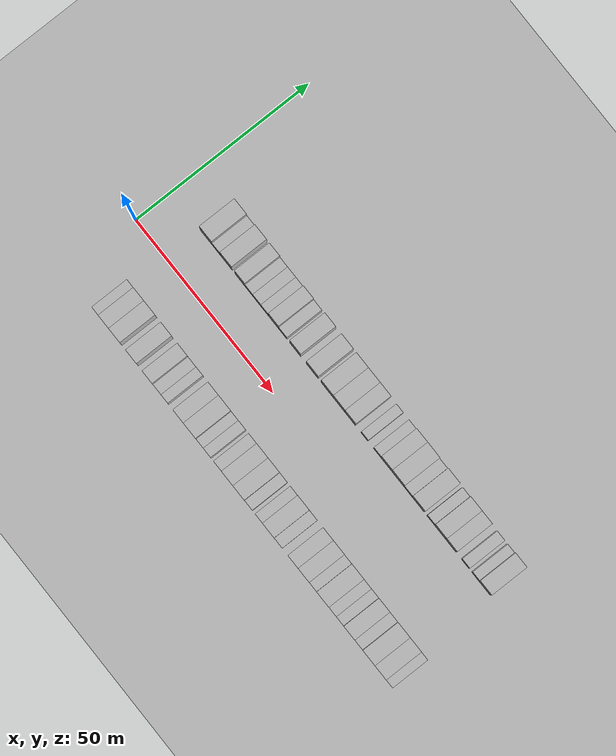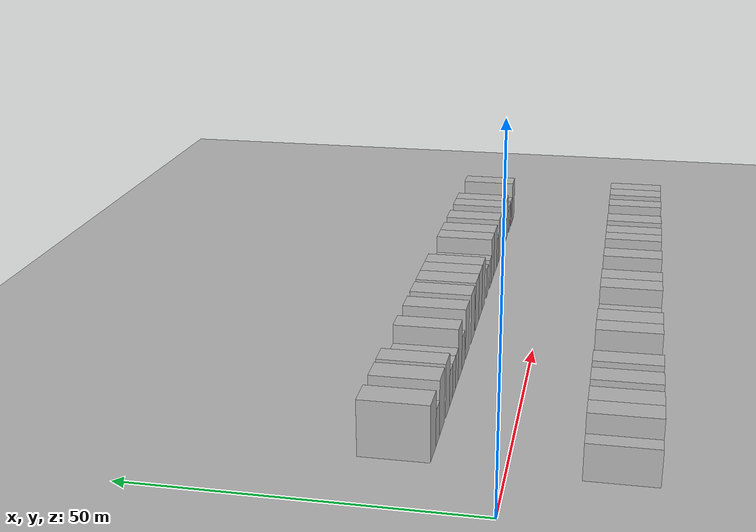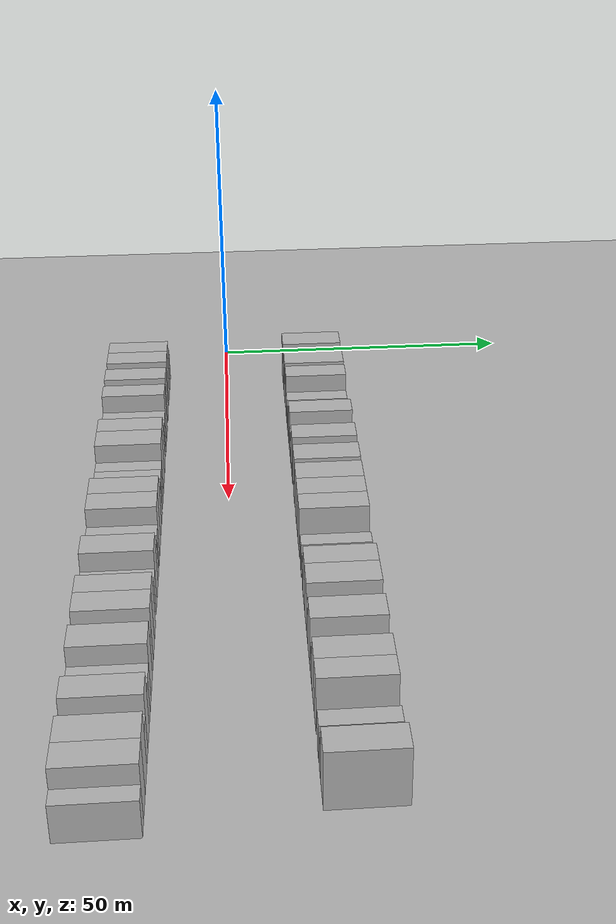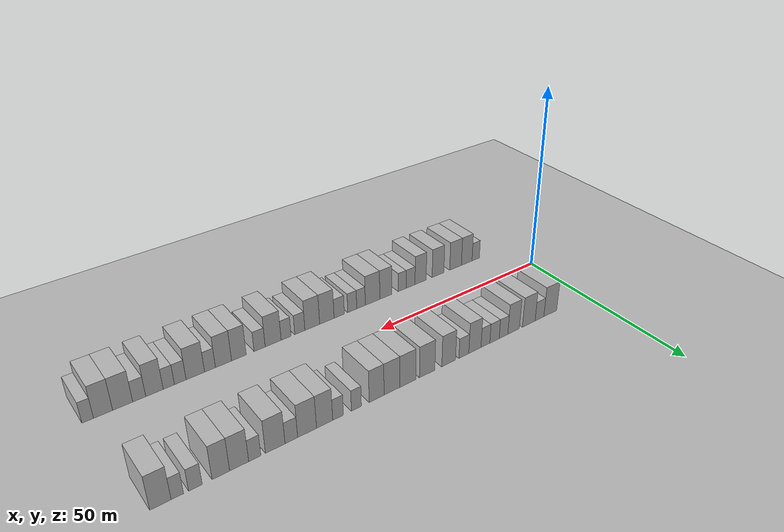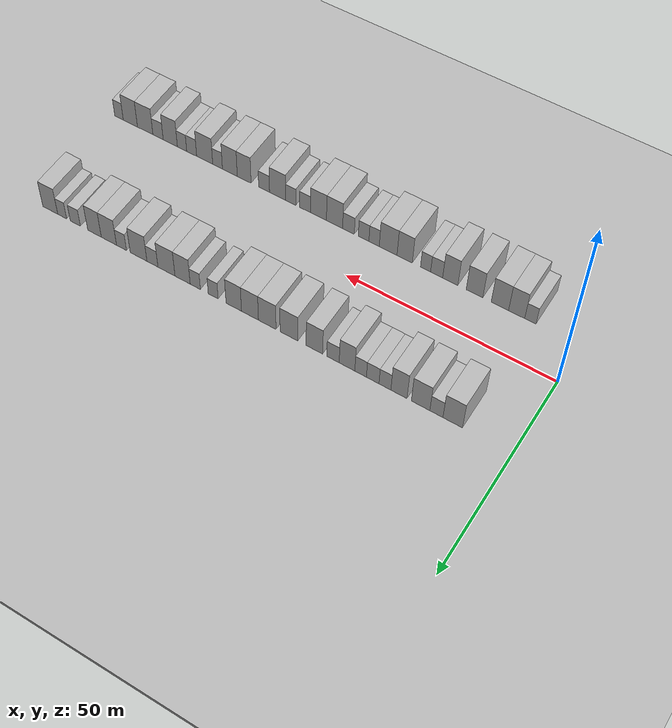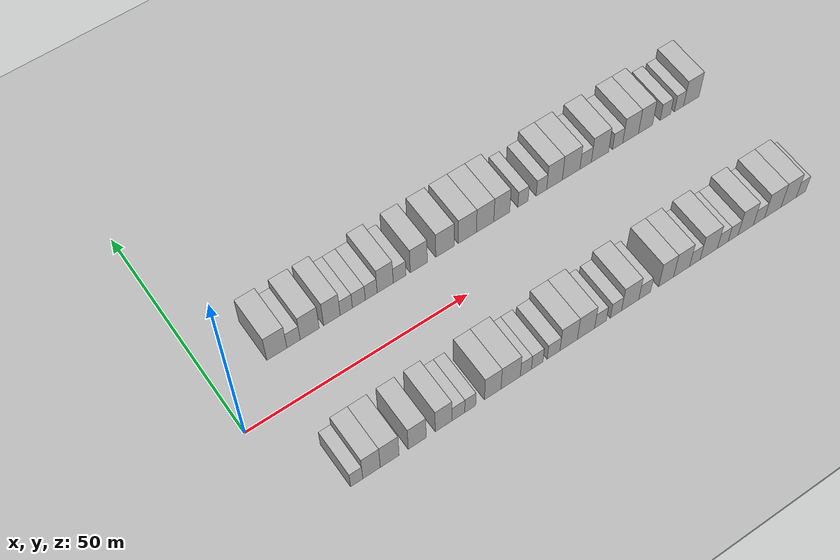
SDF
<sdf version="1.6">
 <world name="default">
  <include><name>ground_plane_1</name><uri>model://HANNAS_ground_plane</uri></include>
  <include>
   <name>ground_plane_2</name>
   <uri>model://HANNAS_ground_plane</uri>
   <pose>100 0 0  0 0 0</pose>
  </include>
  <model name="building_1">
   <static>1</static>
   <pose>13.2188 15.0000 0 0.000000 0.000000 1.570796</pose>
   <link name="link">
    <pose>0 0 4.50 0 0 0</pose>
    <collision name="collision"><geometry><box><size>10.0000 4.4376 9.0000</size></box></geometry></collision>
    <visual name="visual">
     <cast_shadows>0</cast_shadows>
     <geometry><box><size>10.0000 4.4376 9.0000</size></box></geometry>
     <material>
      <script>
       <uri>model://HANNAS_wall/materials/scripts</uri>
       <uri>model://HANNAS_wall/materials/textures</uri>
       <name>vrc/HANNAS_wall</name>
      </script>
     </material>
    </visual>
   </link>
  </model>
  <model name="building_2">
   <static>1</static>
   <pose>16.9260 15.0000 0 0.000000 0.000000 1.570796</pose>
   <link name="link">
    <pose>0 0 3.00 0 0 0</pose>
    <collision name="collision"><geometry><box><size>10.0000 2.9768 6.0000</size></box></geometry></collision>
    <visual name="visual">
     <cast_shadows>0</cast_shadows>
     <geometry><box><size>10.0000 2.9768 6.0000</size></box></geometry>
     <material>
      <script>
       <uri>model://HANNAS_wall/materials/scripts</uri>
       <uri>model://HANNAS_wall/materials/textures</uri>
       <name>vrc/HANNAS_wall</name>
      </script>
     </material>
    </visual>
   </link>
  </model>
  <model name="building_3">
   <static>1</static>
   <pose>20.5367 15.0000 0 0.000000 0.000000 1.570796</pose>
   <link name="link">
    <pose>0 0 4.50 0 0 0</pose>
    <collision name="collision"><geometry><box><size>10.0000 4.2446 9.0000</size></box></geometry></collision>
    <visual name="visual">
     <cast_shadows>0</cast_shadows>
     <geometry><box><size>10.0000 4.2446 9.0000</size></box></geometry>
     <material>
      <script>
       <uri>model://HANNAS_wall/materials/scripts</uri>
       <uri>model://HANNAS_wall/materials/textures</uri>
       <name>vrc/HANNAS_wall</name>
      </script>
     </material>
    </visual>
   </link>
  </model>
  <model name="building_4">
   <static>1</static>
   <pose>25.5316 15.0000 0 0.000000 0.000000 1.570796</pose>
   <link name="link">
    <pose>0 0 4.50 0 0 0</pose>
    <collision name="collision"><geometry><box><size>10.0000 3.7453 9.0000</size></box></geometry></collision>
    <visual name="visual">
     <cast_shadows>0</cast_shadows>
     <geometry><box><size>10.0000 3.7453 9.0000</size></box></geometry>
     <material>
      <script>
       <uri>model://HANNAS_wall/materials/scripts</uri>
       <uri>model://HANNAS_wall/materials/textures</uri>
       <name>vrc/HANNAS_wall</name>
      </script>
     </material>
    </visual>
   </link>
  </model>
  <model name="building_5">
   <static>1</static>
   <pose>28.7888 15.0000 0 0.000000 0.000000 1.570796</pose>
   <link name="link">
    <pose>0 0 3.00 0 0 0</pose>
    <collision name="collision"><geometry><box><size>10.0000 2.7692 6.0000</size></box></geometry></collision>
    <visual name="visual">
     <cast_shadows>0</cast_shadows>
     <geometry><box><size>10.0000 2.7692 6.0000</size></box></geometry>
     <material>
      <script>
       <uri>model://HANNAS_wall/materials/scripts</uri>
       <uri>model://HANNAS_wall/materials/textures</uri>
       <name>vrc/HANNAS_wall</name>
      </script>
     </material>
    </visual>
   </link>
  </model>
  <model name="building_6">
   <static>1</static>
   <pose>31.6491 15.0000 0 0.000000 0.000000 1.570796</pose>
   <link name="link">
    <pose>0 0 3.00 0 0 0</pose>
    <collision name="collision"><geometry><box><size>10.0000 2.9513 6.0000</size></box></geometry></collision>
    <visual name="visual">
     <cast_shadows>0</cast_shadows>
     <geometry><box><size>10.0000 2.9513 6.0000</size></box></geometry>
     <material>
      <script>
       <uri>model://HANNAS_wall/materials/scripts</uri>
       <uri>model://HANNAS_wall/materials/textures</uri>
       <name>vrc/HANNAS_wall</name>
      </script>
     </material>
    </visual>
   </link>
  </model>
  <model name="building_7">
   <static>1</static>
   <pose>34.4945 15.0000 0 0.000000 0.000000 1.570796</pose>
   <link name="link">
    <pose>0 0 3.00 0 0 0</pose>
    <collision name="collision"><geometry><box><size>10.0000 2.7396 6.0000</size></box></geometry></collision>
    <visual name="visual">
     <cast_shadows>0</cast_shadows>
     <geometry><box><size>10.0000 2.7396 6.0000</size></box></geometry>
     <material>
      <script>
       <uri>model://HANNAS_wall/materials/scripts</uri>
       <uri>model://HANNAS_wall/materials/textures</uri>
       <name>vrc/HANNAS_wall</name>
      </script>
     </material>
    </visual>
   </link>
  </model>
  <model name="building_8">
   <static>1</static>
   <pose>37.7245 15.0000 0 0.000000 0.000000 1.570796</pose>
   <link name="link">
    <pose>0 0 4.50 0 0 0</pose>
    <collision name="collision"><geometry><box><size>10.0000 3.7204 9.0000</size></box></geometry></collision>
    <visual name="visual">
     <cast_shadows>0</cast_shadows>
     <geometry><box><size>10.0000 3.7204 9.0000</size></box></geometry>
     <material>
      <script>
       <uri>model://HANNAS_wall/materials/scripts</uri>
       <uri>model://HANNAS_wall/materials/textures</uri>
       <name>vrc/HANNAS_wall</name>
      </script>
     </material>
    </visual>
   </link>
  </model>
  <model name="building_9">
   <static>1</static>
   <pose>41.0655 15.0000 0 0.000000 0.000000 1.570796</pose>
   <link name="link">
    <pose>0 0 3.00 0 0 0</pose>
    <collision name="collision"><geometry><box><size>10.0000 2.9615 6.0000</size></box></geometry></collision>
    <visual name="visual">
     <cast_shadows>0</cast_shadows>
     <geometry><box><size>10.0000 2.9615 6.0000</size></box></geometry>
     <material>
      <script>
       <uri>model://HANNAS_wall/materials/scripts</uri>
       <uri>model://HANNAS_wall/materials/textures</uri>
       <name>vrc/HANNAS_wall</name>
      </script>
     </material>
    </visual>
   </link>
  </model>
  <model name="building_10">
   <static>1</static>
   <pose>45.5478 15.0000 0 0.000000 0.000000 1.570796</pose>
   <link name="link">
    <pose>0 0 4.50 0 0 0</pose>
    <collision name="collision"><geometry><box><size>10.0000 4.0031 9.0000</size></box></geometry></collision>
    <visual name="visual">
     <cast_shadows>0</cast_shadows>
     <geometry><box><size>10.0000 4.0031 9.0000</size></box></geometry>
     <material>
      <script>
       <uri>model://HANNAS_wall/materials/scripts</uri>
       <uri>model://HANNAS_wall/materials/textures</uri>
       <name>vrc/HANNAS_wall</name>
      </script>
     </material>
    </visual>
   </link>
  </model>
  <model name="building_11">
   <static>1</static>
   <pose>51.7211 15.0000 0 0.000000 0.000000 1.570796</pose>
   <link name="link">
    <pose>0 0 4.50 0 0 0</pose>
    <collision name="collision"><geometry><box><size>10.0000 4.3435 9.0000</size></box></geometry></collision>
    <visual name="visual">
     <cast_shadows>0</cast_shadows>
     <geometry><box><size>10.0000 4.3435 9.0000</size></box></geometry>
     <material>
      <script>
       <uri>model://HANNAS_wall/materials/scripts</uri>
       <uri>model://HANNAS_wall/materials/textures</uri>
       <name>vrc/HANNAS_wall</name>
      </script>
     </material>
    </visual>
   </link>
  </model>
  <model name="building_12">
   <static>1</static>
   <pose>57.0680 15.0000 0 0.000000 0.000000 1.570796</pose>
   <link name="link">
    <pose>0 0 4.50 0 0 0</pose>
    <collision name="collision"><geometry><box><size>10.0000 4.3503 9.0000</size></box></geometry></collision>
    <visual name="visual">
     <cast_shadows>0</cast_shadows>
     <geometry><box><size>10.0000 4.3503 9.0000</size></box></geometry>
     <material>
      <script>
       <uri>model://HANNAS_wall/materials/scripts</uri>
       <uri>model://HANNAS_wall/materials/textures</uri>
       <name>vrc/HANNAS_wall</name>
      </script>
     </material>
    </visual>
   </link>
  </model>
  <model name="building_13">
   <static>1</static>
   <pose>61.3553 15.0000 0 0.000000 0.000000 1.570796</pose>
   <link name="link">
    <pose>0 0 4.50 0 0 0</pose>
    <collision name="collision"><geometry><box><size>10.0000 4.2243 9.0000</size></box></geometry></collision>
    <visual name="visual">
     <cast_shadows>0</cast_shadows>
     <geometry><box><size>10.0000 4.2243 9.0000</size></box></geometry>
     <material>
      <script>
       <uri>model://HANNAS_wall/materials/scripts</uri>
       <uri>model://HANNAS_wall/materials/textures</uri>
       <name>vrc/HANNAS_wall</name>
      </script>
     </material>
    </visual>
   </link>
  </model>
  <model name="building_14">
   <static>1</static>
   <pose>65.4110 15.0000 0 0.000000 0.000000 1.570796</pose>
   <link name="link">
    <pose>0 0 4.50 0 0 0</pose>
    <collision name="collision"><geometry><box><size>10.0000 3.8870 9.0000</size></box></geometry></collision>
    <visual name="visual">
     <cast_shadows>0</cast_shadows>
     <geometry><box><size>10.0000 3.8870 9.0000</size></box></geometry>
     <material>
      <script>
       <uri>model://HANNAS_wall/materials/scripts</uri>
       <uri>model://HANNAS_wall/materials/textures</uri>
       <name>vrc/HANNAS_wall</name>
      </script>
     </material>
    </visual>
   </link>
  </model>
  <model name="building_15">
   <static>1</static>
   <pose>70.6132 15.0000 0 0.000000 0.000000 1.570796</pose>
   <link name="link">
    <pose>0 0 3.00 0 0 0</pose>
    <collision name="collision"><geometry><box><size>10.0000 2.5174 6.0000</size></box></geometry></collision>
    <visual name="visual">
     <cast_shadows>0</cast_shadows>
     <geometry><box><size>10.0000 2.5174 6.0000</size></box></geometry>
     <material>
      <script>
       <uri>model://HANNAS_wall/materials/scripts</uri>
       <uri>model://HANNAS_wall/materials/textures</uri>
       <name>vrc/HANNAS_wall</name>
      </script>
     </material>
    </visual>
   </link>
  </model>
  <model name="building_16">
   <static>1</static>
   <pose>75.1780 15.0000 0 0.000000 0.000000 1.570796</pose>
   <link name="link">
    <pose>0 0 3.00 0 0 0</pose>
    <collision name="collision"><geometry><box><size>10.0000 2.6121 6.0000</size></box></geometry></collision>
    <visual name="visual">
     <cast_shadows>0</cast_shadows>
     <geometry><box><size>10.0000 2.6121 6.0000</size></box></geometry>
     <material>
      <script>
       <uri>model://HANNAS_wall/materials/scripts</uri>
       <uri>model://HANNAS_wall/materials/textures</uri>
       <name>vrc/HANNAS_wall</name>
      </script>
     </material>
    </visual>
   </link>
  </model>
  <model name="building_17">
   <static>1</static>
   <pose>78.4476 15.0000 0 0.000000 0.000000 1.570796</pose>
   <link name="link">
    <pose>0 0 4.50 0 0 0</pose>
    <collision name="collision"><geometry><box><size>10.0000 3.9272 9.0000</size></box></geometry></collision>
    <visual name="visual">
     <cast_shadows>0</cast_shadows>
     <geometry><box><size>10.0000 3.9272 9.0000</size></box></geometry>
     <material>
      <script>
       <uri>model://HANNAS_wall/materials/scripts</uri>
       <uri>model://HANNAS_wall/materials/textures</uri>
       <name>vrc/HANNAS_wall</name>
      </script>
     </material>
    </visual>
   </link>
  </model>
  <model name="building_18">
   <static>1</static>
   <pose>82.6273 15.0000 0 0.000000 0.000000 1.570796</pose>
   <link name="link">
    <pose>0 0 4.50 0 0 0</pose>
    <collision name="collision"><geometry><box><size>10.0000 4.4322 9.0000</size></box></geometry></collision>
    <visual name="visual">
     <cast_shadows>0</cast_shadows>
     <geometry><box><size>10.0000 4.4322 9.0000</size></box></geometry>
     <material>
      <script>
       <uri>model://HANNAS_wall/materials/scripts</uri>
       <uri>model://HANNAS_wall/materials/textures</uri>
       <name>vrc/HANNAS_wall</name>
      </script>
     </material>
    </visual>
   </link>
  </model>
  <model name="building_19">
   <static>1</static>
   <pose>86.2931 15.0000 0 0.000000 0.000000 1.570796</pose>
   <link name="link">
    <pose>0 0 3.00 0 0 0</pose>
    <collision name="collision"><geometry><box><size>10.0000 2.8995 6.0000</size></box></geometry></collision>
    <visual name="visual">
     <cast_shadows>0</cast_shadows>
     <geometry><box><size>10.0000 2.8995 6.0000</size></box></geometry>
     <material>
      <script>
       <uri>model://HANNAS_wall/materials/scripts</uri>
       <uri>model://HANNAS_wall/materials/textures</uri>
       <name>vrc/HANNAS_wall</name>
      </script>
     </material>
    </visual>
   </link>
  </model>
  <model name="building_20">
   <static>1</static>
   <pose>89.9431 15.0000 0 0.000000 0.000000 1.570796</pose>
   <link name="link">
    <pose>0 0 4.50 0 0 0</pose>
    <collision name="collision"><geometry><box><size>10.0000 4.4005 9.0000</size></box></geometry></collision>
    <visual name="visual">
     <cast_shadows>0</cast_shadows>
     <geometry><box><size>10.0000 4.4005 9.0000</size></box></geometry>
     <material>
      <script>
       <uri>model://HANNAS_wall/materials/scripts</uri>
       <uri>model://HANNAS_wall/materials/textures</uri>
       <name>vrc/HANNAS_wall</name>
      </script>
     </material>
    </visual>
   </link>
  </model>
  <model name="building_21">
   <static>1</static>
   <pose>94.4690 15.0000 0 0.000000 0.000000 1.570796</pose>
   <link name="link">
    <pose>0 0 3.00 0 0 0</pose>
    <collision name="collision"><geometry><box><size>10.0000 2.6513 6.0000</size></box></geometry></collision>
    <visual name="visual">
     <cast_shadows>0</cast_shadows>
     <geometry><box><size>10.0000 2.6513 6.0000</size></box></geometry>
     <material>
      <script>
       <uri>model://HANNAS_wall/materials/scripts</uri>
       <uri>model://HANNAS_wall/materials/textures</uri>
       <name>vrc/HANNAS_wall</name>
      </script>
     </material>
    </visual>
   </link>
  </model>
  <model name="building_22">
   <static>1</static>
   <pose>97.8308 15.0000 0 0.000000 0.000000 1.570796</pose>
   <link name="link">
    <pose>0 0 4.50 0 0 0</pose>
    <collision name="collision"><geometry><box><size>10.0000 4.0723 9.0000</size></box></geometry></collision>
    <visual name="visual">
     <cast_shadows>0</cast_shadows>
     <geometry><box><size>10.0000 4.0723 9.0000</size></box></geometry>
     <material>
      <script>
       <uri>model://HANNAS_wall/materials/scripts</uri>
       <uri>model://HANNAS_wall/materials/textures</uri>
       <name>vrc/HANNAS_wall</name>
      </script>
     </material>
    </visual>
   </link>
  </model>
  <model name="building_23">
   <static>1</static>
   <pose>101.7011 15.0000 0 0.000000 0.000000 1.570796</pose>
   <link name="link">
    <pose>0 0 4.50 0 0 0</pose>
    <collision name="collision"><geometry><box><size>10.0000 3.6684 9.0000</size></box></geometry></collision>
    <visual name="visual">
     <cast_shadows>0</cast_shadows>
     <geometry><box><size>10.0000 3.6684 9.0000</size></box></geometry>
     <material>
      <script>
       <uri>model://HANNAS_wall/materials/scripts</uri>
       <uri>model://HANNAS_wall/materials/textures</uri>
       <name>vrc/HANNAS_wall</name>
      </script>
     </material>
    </visual>
   </link>
  </model>
  <model name="building_24">
   <static>1</static>
   <pose>106.9101 15.0000 0 0.000000 0.000000 1.570796</pose>
   <link name="link">
    <pose>0 0 3.00 0 0 0</pose>
    <collision name="collision"><geometry><box><size>10.0000 2.7494 6.0000</size></box></geometry></collision>
    <visual name="visual">
     <cast_shadows>0</cast_shadows>
     <geometry><box><size>10.0000 2.7494 6.0000</size></box></geometry>
     <material>
      <script>
       <uri>model://HANNAS_wall/materials/scripts</uri>
       <uri>model://HANNAS_wall/materials/textures</uri>
       <name>vrc/HANNAS_wall</name>
      </script>
     </material>
    </visual>
   </link>
  </model>
  <model name="building_25">
   <static>1</static>
   <pose>110.5071 15.0000 0 0.000000 0.000000 1.570796</pose>
   <link name="link">
    <pose>0 0 3.00 0 0 0</pose>
    <collision name="collision"><geometry><box><size>10.0000 2.4445 6.0000</size></box></geometry></collision>
    <visual name="visual">
     <cast_shadows>0</cast_shadows>
     <geometry><box><size>10.0000 2.4445 6.0000</size></box></geometry>
     <material>
      <script>
       <uri>model://HANNAS_wall/materials/scripts</uri>
       <uri>model://HANNAS_wall/materials/textures</uri>
       <name>vrc/HANNAS_wall</name>
      </script>
     </material>
    </visual>
   </link>
  </model>
  <model name="building_26">
   <static>1</static>
   <pose>113.7879 15.0000 0 0.000000 0.000000 1.570796</pose>
   <link name="link">
    <pose>0 0 4.50 0 0 0</pose>
    <collision name="collision"><geometry><box><size>10.0000 4.1172 9.0000</size></box></geometry></collision>
    <visual name="visual">
     <cast_shadows>0</cast_shadows>
     <geometry><box><size>10.0000 4.1172 9.0000</size></box></geometry>
     <material>
      <script>
       <uri>model://HANNAS_wall/materials/scripts</uri>
       <uri>model://HANNAS_wall/materials/textures</uri>
       <name>vrc/HANNAS_wall</name>
      </script>
     </material>
    </visual>
   </link>
  </model>
  <model name="building_55">
   <static>1</static>
   <pose>11.3183 -15.0000 0 0.000000 0.000000 1.570796</pose>
   <link name="link">
    <pose>0 0 3.00 0 0 0</pose>
    <collision name="collision"><geometry><box><size>10.0000 2.6366 6.0000</size></box></geometry></collision>
    <visual name="visual">
     <cast_shadows>0</cast_shadows>
     <geometry><box><size>10.0000 2.6366 6.0000</size></box></geometry>
     <material>
      <script>
       <uri>model://HANNAS_wall/materials/scripts</uri>
       <uri>model://HANNAS_wall/materials/textures</uri>
       <name>vrc/HANNAS_wall</name>
      </script>
     </material>
    </visual>
   </link>
  </model>
  <model name="building_56">
   <static>1</static>
   <pose>14.5231 -15.0000 0 0.000000 0.000000 1.570796</pose>
   <link name="link">
    <pose>0 0 4.50 0 0 0</pose>
    <collision name="collision"><geometry><box><size>10.0000 3.7730 9.0000</size></box></geometry></collision>
    <visual name="visual">
     <cast_shadows>0</cast_shadows>
     <geometry><box><size>10.0000 3.7730 9.0000</size></box></geometry>
     <material>
      <script>
       <uri>model://HANNAS_wall/materials/scripts</uri>
       <uri>model://HANNAS_wall/materials/textures</uri>
       <name>vrc/HANNAS_wall</name>
      </script>
     </material>
    </visual>
   </link>
  </model>
  <model name="building_57">
   <static>1</static>
   <pose>18.4563 -15.0000 0 0.000000 0.000000 1.570796</pose>
   <link name="link">
    <pose>0 0 4.50 0 0 0</pose>
    <collision name="collision"><geometry><box><size>10.0000 4.0935 9.0000</size></box></geometry></collision>
    <visual name="visual">
     <cast_shadows>0</cast_shadows>
     <geometry><box><size>10.0000 4.0935 9.0000</size></box></geometry>
     <material>
      <script>
       <uri>model://HANNAS_wall/materials/scripts</uri>
       <uri>model://HANNAS_wall/materials/textures</uri>
       <name>vrc/HANNAS_wall</name>
      </script>
     </material>
    </visual>
   </link>
  </model>
  <model name="building_58">
   <static>1</static>
   <pose>24.4875 -15.0000 0 0.000000 0.000000 1.570796</pose>
   <link name="link">
    <pose>0 0 4.50 0 0 0</pose>
    <collision name="collision"><geometry><box><size>10.0000 3.9688 9.0000</size></box></geometry></collision>
    <visual name="visual">
     <cast_shadows>0</cast_shadows>
     <geometry><box><size>10.0000 3.9688 9.0000</size></box></geometry>
     <material>
      <script>
       <uri>model://HANNAS_wall/materials/scripts</uri>
       <uri>model://HANNAS_wall/materials/textures</uri>
       <name>vrc/HANNAS_wall</name>
      </script>
     </material>
    </visual>
   </link>
  </model>
  <model name="building_59">
   <static>1</static>
   <pose>30.3097 -15.0000 0 0.000000 0.000000 1.570796</pose>
   <link name="link">
    <pose>0 0 4.50 0 0 0</pose>
    <collision name="collision"><geometry><box><size>10.0000 3.6756 9.0000</size></box></geometry></collision>
    <visual name="visual">
     <cast_shadows>0</cast_shadows>
     <geometry><box><size>10.0000 3.6756 9.0000</size></box></geometry>
     <material>
      <script>
       <uri>model://HANNAS_wall/materials/scripts</uri>
       <uri>model://HANNAS_wall/materials/textures</uri>
       <name>vrc/HANNAS_wall</name>
      </script>
     </material>
    </visual>
   </link>
  </model>
  <model name="building_60">
   <static>1</static>
   <pose>33.6097 -15.0000 0 0.000000 0.000000 1.570796</pose>
   <link name="link">
    <pose>0 0 3.00 0 0 0</pose>
    <collision name="collision"><geometry><box><size>10.0000 2.9243 6.0000</size></box></geometry></collision>
    <visual name="visual">
     <cast_shadows>0</cast_shadows>
     <geometry><box><size>10.0000 2.9243 6.0000</size></box></geometry>
     <material>
      <script>
       <uri>model://HANNAS_wall/materials/scripts</uri>
       <uri>model://HANNAS_wall/materials/textures</uri>
       <name>vrc/HANNAS_wall</name>
      </script>
     </material>
    </visual>
   </link>
  </model>
  <model name="building_61">
   <static>1</static>
   <pose>36.3084 -15.0000 0 0.000000 0.000000 1.570796</pose>
   <link name="link">
    <pose>0 0 3.00 0 0 0</pose>
    <collision name="collision"><geometry><box><size>10.0000 2.4731 6.0000</size></box></geometry></collision>
    <visual name="visual">
     <cast_shadows>0</cast_shadows>
     <geometry><box><size>10.0000 2.4731 6.0000</size></box></geometry>
     <material>
      <script>
       <uri>model://HANNAS_wall/materials/scripts</uri>
       <uri>model://HANNAS_wall/materials/textures</uri>
       <name>vrc/HANNAS_wall</name>
      </script>
     </material>
    </visual>
   </link>
  </model>
  <model name="building_62">
   <static>1</static>
   <pose>41.4324 -15.0000 0 0.000000 0.000000 1.570796</pose>
   <link name="link">
    <pose>0 0 4.50 0 0 0</pose>
    <collision name="collision"><geometry><box><size>10.0000 3.7749 9.0000</size></box></geometry></collision>
    <visual name="visual">
     <cast_shadows>0</cast_shadows>
     <geometry><box><size>10.0000 3.7749 9.0000</size></box></geometry>
     <material>
      <script>
       <uri>model://HANNAS_wall/materials/scripts</uri>
       <uri>model://HANNAS_wall/materials/textures</uri>
       <name>vrc/HANNAS_wall</name>
      </script>
     </material>
    </visual>
   </link>
  </model>
  <model name="building_63">
   <static>1</static>
   <pose>45.5361 -15.0000 0 0.000000 0.000000 1.570796</pose>
   <link name="link">
    <pose>0 0 4.50 0 0 0</pose>
    <collision name="collision"><geometry><box><size>10.0000 4.4326 9.0000</size></box></geometry></collision>
    <visual name="visual">
     <cast_shadows>0</cast_shadows>
     <geometry><box><size>10.0000 4.4326 9.0000</size></box></geometry>
     <material>
      <script>
       <uri>model://HANNAS_wall/materials/scripts</uri>
       <uri>model://HANNAS_wall/materials/textures</uri>
       <name>vrc/HANNAS_wall</name>
      </script>
     </material>
    </visual>
   </link>
  </model>
  <model name="building_64">
   <static>1</static>
   <pose>49.0451 -15.0000 0 0.000000 0.000000 1.570796</pose>
   <link name="link">
    <pose>0 0 3.00 0 0 0</pose>
    <collision name="collision"><geometry><box><size>10.0000 2.5852 6.0000</size></box></geometry></collision>
    <visual name="visual">
     <cast_shadows>0</cast_shadows>
     <geometry><box><size>10.0000 2.5852 6.0000</size></box></geometry>
     <material>
      <script>
       <uri>model://HANNAS_wall/materials/scripts</uri>
       <uri>model://HANNAS_wall/materials/textures</uri>
       <name>vrc/HANNAS_wall</name>
      </script>
     </material>
    </visual>
   </link>
  </model>
  <model name="building_65">
   <static>1</static>
   <pose>51.6767 -15.0000 0 0.000000 0.000000 1.570796</pose>
   <link name="link">
    <pose>0 0 3.00 0 0 0</pose>
    <collision name="collision"><geometry><box><size>10.0000 2.6781 6.0000</size></box></geometry></collision>
    <visual name="visual">
     <cast_shadows>0</cast_shadows>
     <geometry><box><size>10.0000 2.6781 6.0000</size></box></geometry>
     <material>
      <script>
       <uri>model://HANNAS_wall/materials/scripts</uri>
       <uri>model://HANNAS_wall/materials/textures</uri>
       <name>vrc/HANNAS_wall</name>
      </script>
     </material>
    </visual>
   </link>
  </model>
  <model name="building_66">
   <static>1</static>
   <pose>55.5078 -15.0000 0 0.000000 0.000000 1.570796</pose>
   <link name="link">
    <pose>0 0 3.00 0 0 0</pose>
    <collision name="collision"><geometry><box><size>10.0000 2.9841 6.0000</size></box></geometry></collision>
    <visual name="visual">
     <cast_shadows>0</cast_shadows>
     <geometry><box><size>10.0000 2.9841 6.0000</size></box></geometry>
     <material>
      <script>
       <uri>model://HANNAS_wall/materials/scripts</uri>
       <uri>model://HANNAS_wall/materials/textures</uri>
       <name>vrc/HANNAS_wall</name>
      </script>
     </material>
    </visual>
   </link>
  </model>
  <model name="building_67">
   <static>1</static>
   <pose>59.0604 -15.0000 0 0.000000 0.000000 1.570796</pose>
   <link name="link">
    <pose>0 0 4.50 0 0 0</pose>
    <collision name="collision"><geometry><box><size>10.0000 4.1211 9.0000</size></box></geometry></collision>
    <visual name="visual">
     <cast_shadows>0</cast_shadows>
     <geometry><box><size>10.0000 4.1211 9.0000</size></box></geometry>
     <material>
      <script>
       <uri>model://HANNAS_wall/materials/scripts</uri>
       <uri>model://HANNAS_wall/materials/textures</uri>
       <name>vrc/HANNAS_wall</name>
      </script>
     </material>
    </visual>
   </link>
  </model>
  <model name="building_68">
   <static>1</static>
   <pose>63.1817 -15.0000 0 0.000000 0.000000 1.570796</pose>
   <link name="link">
    <pose>0 0 4.50 0 0 0</pose>
    <collision name="collision"><geometry><box><size>10.0000 4.1217 9.0000</size></box></geometry></collision>
    <visual name="visual">
     <cast_shadows>0</cast_shadows>
     <geometry><box><size>10.0000 4.1217 9.0000</size></box></geometry>
     <material>
      <script>
       <uri>model://HANNAS_wall/materials/scripts</uri>
       <uri>model://HANNAS_wall/materials/textures</uri>
       <name>vrc/HANNAS_wall</name>
      </script>
     </material>
    </visual>
   </link>
  </model>
  <model name="building_69">
   <static>1</static>
   <pose>66.6347 -15.0000 0 0.000000 0.000000 1.570796</pose>
   <link name="link">
    <pose>0 0 3.00 0 0 0</pose>
    <collision name="collision"><geometry><box><size>10.0000 2.7842 6.0000</size></box></geometry></collision>
    <visual name="visual">
     <cast_shadows>0</cast_shadows>
     <geometry><box><size>10.0000 2.7842 6.0000</size></box></geometry>
     <material>
      <script>
       <uri>model://HANNAS_wall/materials/scripts</uri>
       <uri>model://HANNAS_wall/materials/textures</uri>
       <name>vrc/HANNAS_wall</name>
      </script>
     </material>
    </visual>
   </link>
  </model>
  <model name="building_70">
   <static>1</static>
   <pose>70.3638 -15.0000 0 0.000000 0.000000 1.570796</pose>
   <link name="link">
    <pose>0 0 3.00 0 0 0</pose>
    <collision name="collision"><geometry><box><size>10.0000 2.6740 6.0000</size></box></geometry></collision>
    <visual name="visual">
     <cast_shadows>0</cast_shadows>
     <geometry><box><size>10.0000 2.6740 6.0000</size></box></geometry>
     <material>
      <script>
       <uri>model://HANNAS_wall/materials/scripts</uri>
       <uri>model://HANNAS_wall/materials/textures</uri>
       <name>vrc/HANNAS_wall</name>
      </script>
     </material>
    </visual>
   </link>
  </model>
  <model name="building_71">
   <static>1</static>
   <pose>73.8072 -15.0000 0 0.000000 0.000000 1.570796</pose>
   <link name="link">
    <pose>0 0 4.50 0 0 0</pose>
    <collision name="collision"><geometry><box><size>10.0000 4.2128 9.0000</size></box></geometry></collision>
    <visual name="visual">
     <cast_shadows>0</cast_shadows>
     <geometry><box><size>10.0000 4.2128 9.0000</size></box></geometry>
     <material>
      <script>
       <uri>model://HANNAS_wall/materials/scripts</uri>
       <uri>model://HANNAS_wall/materials/textures</uri>
       <name>vrc/HANNAS_wall</name>
      </script>
     </material>
    </visual>
   </link>
  </model>
  <model name="building_72">
   <static>1</static>
   <pose>77.3588 -15.0000 0 0.000000 0.000000 1.570796</pose>
   <link name="link">
    <pose>0 0 3.00 0 0 0</pose>
    <collision name="collision"><geometry><box><size>10.0000 2.8905 6.0000</size></box></geometry></collision>
    <visual name="visual">
     <cast_shadows>0</cast_shadows>
     <geometry><box><size>10.0000 2.8905 6.0000</size></box></geometry>
     <material>
      <script>
       <uri>model://HANNAS_wall/materials/scripts</uri>
       <uri>model://HANNAS_wall/materials/textures</uri>
       <name>vrc/HANNAS_wall</name>
      </script>
     </material>
    </visual>
   </link>
  </model>
  <model name="building_73">
   <static>1</static>
   <pose>82.6483 -15.0000 0 0.000000 0.000000 1.570796</pose>
   <link name="link">
    <pose>0 0 4.50 0 0 0</pose>
    <collision name="collision"><geometry><box><size>10.0000 3.6885 9.0000</size></box></geometry></collision>
    <visual name="visual">
     <cast_shadows>0</cast_shadows>
     <geometry><box><size>10.0000 3.6885 9.0000</size></box></geometry>
     <material>
      <script>
       <uri>model://HANNAS_wall/materials/scripts</uri>
       <uri>model://HANNAS_wall/materials/textures</uri>
       <name>vrc/HANNAS_wall</name>
      </script>
     </material>
    </visual>
   </link>
  </model>
  <model name="building_74">
   <static>1</static>
   <pose>86.4869 -15.0000 0 0.000000 0.000000 1.570796</pose>
   <link name="link">
    <pose>0 0 4.50 0 0 0</pose>
    <collision name="collision"><geometry><box><size>10.0000 3.9888 9.0000</size></box></geometry></collision>
    <visual name="visual">
     <cast_shadows>0</cast_shadows>
     <geometry><box><size>10.0000 3.9888 9.0000</size></box></geometry>
     <material>
      <script>
       <uri>model://HANNAS_wall/materials/scripts</uri>
       <uri>model://HANNAS_wall/materials/textures</uri>
       <name>vrc/HANNAS_wall</name>
      </script>
     </material>
    </visual>
   </link>
  </model>
  <model name="building_75">
   <static>1</static>
   <pose>89.8007 -15.0000 0 0.000000 0.000000 1.570796</pose>
   <link name="link">
    <pose>0 0 3.00 0 0 0</pose>
    <collision name="collision"><geometry><box><size>10.0000 2.6387 6.0000</size></box></geometry></collision>
    <visual name="visual">
     <cast_shadows>0</cast_shadows>
     <geometry><box><size>10.0000 2.6387 6.0000</size></box></geometry>
     <material>
      <script>
       <uri>model://HANNAS_wall/materials/scripts</uri>
       <uri>model://HANNAS_wall/materials/textures</uri>
       <name>vrc/HANNAS_wall</name>
      </script>
     </material>
    </visual>
   </link>
  </model>
  <model name="building_76">
   <static>1</static>
   <pose>93.3070 -15.0000 0 0.000000 0.000000 1.570796</pose>
   <link name="link">
    <pose>0 0 4.50 0 0 0</pose>
    <collision name="collision"><geometry><box><size>10.0000 4.3741 9.0000</size></box></geometry></collision>
    <visual name="visual">
     <cast_shadows>0</cast_shadows>
     <geometry><box><size>10.0000 4.3741 9.0000</size></box></geometry>
     <material>
      <script>
       <uri>model://HANNAS_wall/materials/scripts</uri>
       <uri>model://HANNAS_wall/materials/textures</uri>
       <name>vrc/HANNAS_wall</name>
      </script>
     </material>
    </visual>
   </link>
  </model>
  <model name="building_77">
   <static>1</static>
   <pose>96.8554 -15.0000 0 0.000000 0.000000 1.570796</pose>
   <link name="link">
    <pose>0 0 3.00 0 0 0</pose>
    <collision name="collision"><geometry><box><size>10.0000 2.7226 6.0000</size></box></geometry></collision>
    <visual name="visual">
     <cast_shadows>0</cast_shadows>
     <geometry><box><size>10.0000 2.7226 6.0000</size></box></geometry>
     <material>
      <script>
       <uri>model://HANNAS_wall/materials/scripts</uri>
       <uri>model://HANNAS_wall/materials/textures</uri>
       <name>vrc/HANNAS_wall</name>
      </script>
     </material>
    </visual>
   </link>
  </model>
  <model name="building_78">
   <static>1</static>
   <pose>99.5029 -15.0000 0 0.000000 0.000000 1.570796</pose>
   <link name="link">
    <pose>0 0 3.00 0 0 0</pose>
    <collision name="collision"><geometry><box><size>10.0000 2.5725 6.0000</size></box></geometry></collision>
    <visual name="visual">
     <cast_shadows>0</cast_shadows>
     <geometry><box><size>10.0000 2.5725 6.0000</size></box></geometry>
     <material>
      <script>
       <uri>model://HANNAS_wall/materials/scripts</uri>
       <uri>model://HANNAS_wall/materials/textures</uri>
       <name>vrc/HANNAS_wall</name>
      </script>
     </material>
    </visual>
   </link>
  </model>
  <model name="building_79">
   <static>1</static>
   <pose>102.7517 -15.0000 0 0.000000 0.000000 1.570796</pose>
   <link name="link">
    <pose>0 0 4.50 0 0 0</pose>
    <collision name="collision"><geometry><box><size>10.0000 3.9250 9.0000</size></box></geometry></collision>
    <visual name="visual">
     <cast_shadows>0</cast_shadows>
     <geometry><box><size>10.0000 3.9250 9.0000</size></box></geometry>
     <material>
      <script>
       <uri>model://HANNAS_wall/materials/scripts</uri>
       <uri>model://HANNAS_wall/materials/textures</uri>
       <name>vrc/HANNAS_wall</name>
      </script>
     </material>
    </visual>
   </link>
  </model>
  <model name="building_80">
   <static>1</static>
   <pose>106.1517 -15.0000 0 0.000000 0.000000 1.570796</pose>
   <link name="link">
    <pose>0 0 3.00 0 0 0</pose>
    <collision name="collision"><geometry><box><size>10.0000 2.8751 6.0000</size></box></geometry></collision>
    <visual name="visual">
     <cast_shadows>0</cast_shadows>
     <geometry><box><size>10.0000 2.8751 6.0000</size></box></geometry>
     <material>
      <script>
       <uri>model://HANNAS_wall/materials/scripts</uri>
       <uri>model://HANNAS_wall/materials/textures</uri>
       <name>vrc/HANNAS_wall</name>
      </script>
     </material>
    </visual>
   </link>
  </model>
  <model name="building_81">
   <static>1</static>
   <pose>109.7528 -15.0000 0 0.000000 0.000000 1.570796</pose>
   <link name="link">
    <pose>0 0 4.50 0 0 0</pose>
    <collision name="collision"><geometry><box><size>10.0000 4.3271 9.0000</size></box></geometry></collision>
    <visual name="visual">
     <cast_shadows>0</cast_shadows>
     <geometry><box><size>10.0000 4.3271 9.0000</size></box></geometry>
     <material>
      <script>
       <uri>model://HANNAS_wall/materials/scripts</uri>
       <uri>model://HANNAS_wall/materials/textures</uri>
       <name>vrc/HANNAS_wall</name>
      </script>
     </material>
    </visual>
   </link>
  </model>
  <model name="building_82">
   <static>1</static>
   <pose>113.9319 -15.0000 0 0.000000 0.000000 1.570796</pose>
   <link name="link">
    <pose>0 0 4.50 0 0 0</pose>
    <collision name="collision"><geometry><box><size>10.0000 4.0311 9.0000</size></box></geometry></collision>
    <visual name="visual">
     <cast_shadows>0</cast_shadows>
     <geometry><box><size>10.0000 4.0311 9.0000</size></box></geometry>
     <material>
      <script>
       <uri>model://HANNAS_wall/materials/scripts</uri>
       <uri>model://HANNAS_wall/materials/textures</uri>
       <name>vrc/HANNAS_wall</name>
      </script>
     </material>
    </visual>
   </link>
  </model>
  <model name="building_83">
   <static>1</static>
   <pose>117.1591 -15.0000 0 0.000000 0.000000 1.570796</pose>
   <link name="link">
    <pose>0 0 3.00 0 0 0</pose>
    <collision name="collision"><geometry><box><size>10.0000 2.4234 6.0000</size></box></geometry></collision>
    <visual name="visual">
     <cast_shadows>0</cast_shadows>
     <geometry><box><size>10.0000 2.4234 6.0000</size></box></geometry>
     <material>
      <script>
       <uri>model://HANNAS_wall/materials/scripts</uri>
       <uri>model://HANNAS_wall/materials/textures</uri>
       <name>vrc/HANNAS_wall</name>
      </script>
     </material>
    </visual>
   </link>
  </model>
 </world>
</sdf>
